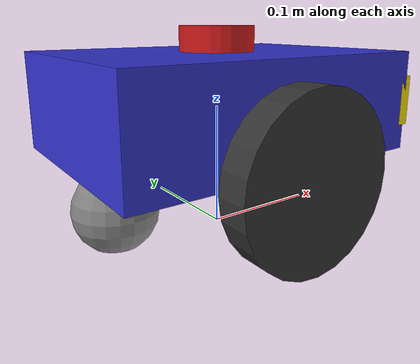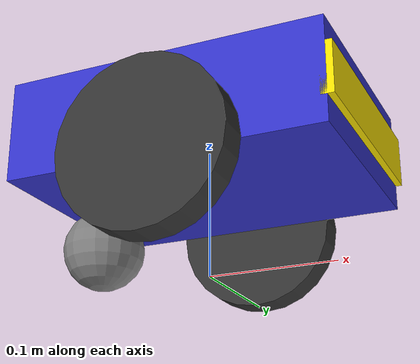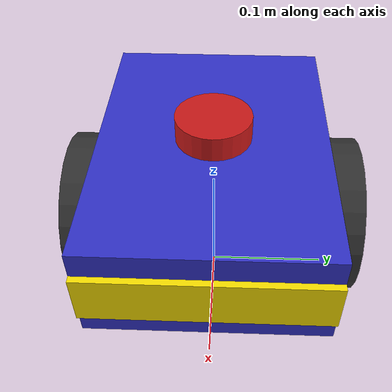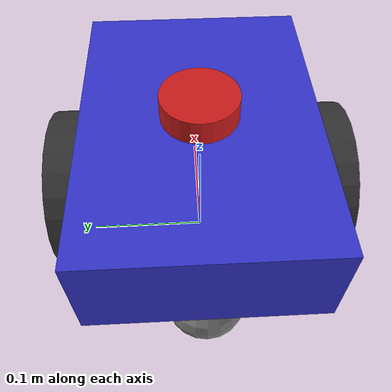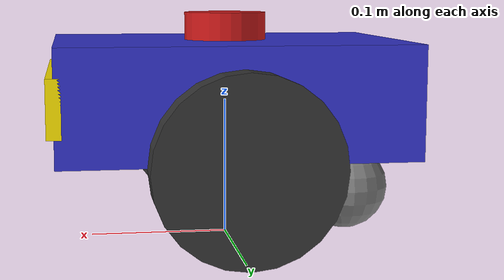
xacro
<?xml version="1.0"?>
<robot xmlns:xacro="http://www.ros.org/wiki/xacro" name="diff_drive_robot">

  <!-- ==================== ROBOT PARAMETERS ==================== -->
  <xacro:property name="wheel_radius" value="0.065"/>
  <xacro:property name="wheel_width" value="0.025"/>
  <xacro:property name="wheel_base" value="0.21"/>

  <xacro:property name="chassis_length" value="0.25"/>
  <xacro:property name="chassis_width" value="0.18"/>
  <xacro:property name="chassis_height" value="0.08"/>
  <xacro:property name="chassis_mass" value="2.0"/>

  <xacro:property name="caster_radius" value="0.0325"/>
  <xacro:property name="lidar_radius" value="0.03"/>
  <xacro:property name="lidar_height" value="0.02"/>

  <!-- ==================== BASE FOOTPRINT ==================== -->
  <link name="base_footprint"/>

  <joint name="base_footprint_joint" type="fixed">
    <parent link="base_footprint"/>
    <child link="base_link"/>
    <origin xyz="0 0 ${wheel_radius}" rpy="0 0 0"/>
  </joint>

  <!-- ==================== BASE LINK (CHASSIS) ==================== -->
  <link name="base_link">
    <visual>
      <geometry>
        <box size="${chassis_length} ${chassis_width} ${chassis_height}"/>
      </geometry>
      <origin xyz="0 0 ${chassis_height/2}" rpy="0 0 0"/>
      <material name="blue">
        <color rgba="0.2 0.2 0.8 1.0"/>
      </material>
    </visual>
    <collision>
      <geometry>
        <box size="${chassis_length} ${chassis_width} ${chassis_height}"/>
      </geometry>
      <origin xyz="0 0 ${chassis_height/2}" rpy="0 0 0"/>
    </collision>
    <inertial>
      <mass value="${chassis_mass}"/>
      <origin xyz="-0.04 0 0" rpy="0 0 0"/>
      <inertia ixx="0.01" ixy="0.0" ixz="0.0"
               iyy="0.01" iyz="0.0"
               izz="0.01"/>
    </inertial>
  </link>

  <!-- ==================== LEFT WHEEL ==================== -->
  <link name="left_wheel">
    <visual>
      <geometry>
        <cylinder radius="${wheel_radius}" length="${wheel_width}"/>
      </geometry>
      <origin xyz="0 0 0" rpy="${pi/2} 0 0"/>
      <material name="dark_grey">
        <color rgba="0.2 0.2 0.2 1.0"/>
      </material>
    </visual>
    <collision>
      <geometry>
        <cylinder radius="${wheel_radius}" length="${wheel_width}"/>
      </geometry>
      <origin xyz="0 0 0" rpy="${pi/2} 0 0"/>
    </collision>
    <inertial>
      <mass value="0.3"/>
      <origin xyz="0 0 0" rpy="${pi/2} 0 0"/>
      <inertia ixx="0.0005" ixy="0.0" ixz="0.0"
               iyy="0.0005" iyz="0.0"
               izz="0.0005"/>
    </inertial>
  </link>

  <joint name="left_wheel_joint" type="continuous">
    <parent link="base_link"/>
    <child link="left_wheel"/>
    <origin xyz="0 ${wheel_base/2} 0" rpy="0 0 0"/>
    <axis xyz="0 1 0"/>
  </joint>

  <!-- ==================== RIGHT WHEEL ==================== -->
  <link name="right_wheel">
    <visual>
      <geometry>
        <cylinder radius="${wheel_radius}" length="${wheel_width}"/>
      </geometry>
      <origin xyz="0 0 0" rpy="${pi/2} 0 0"/>
      <material name="dark_grey">
        <color rgba="0.2 0.2 0.2 1.0"/>
      </material>
    </visual>
    <collision>
      <geometry>
        <cylinder radius="${wheel_radius}" length="${wheel_width}"/>
      </geometry>
      <origin xyz="0 0 0" rpy="${pi/2} 0 0"/>
    </collision>
    <inertial>
      <mass value="0.3"/>
      <origin xyz="0 0 0" rpy="${pi/2} 0 0"/>
      <inertia ixx="0.0005" ixy="0.0" ixz="0.0"
               iyy="0.0005" iyz="0.0"
               izz="0.0005"/>
    </inertial>
  </link>

  <joint name="right_wheel_joint" type="continuous">
    <parent link="base_link"/>
    <child link="right_wheel"/>
    <origin xyz="0 ${-wheel_base/2} 0" rpy="0 0 0"/>
    <axis xyz="0 1 0"/>
  </joint>

  <!-- ==================== CASTER WHEEL ==================== -->
  <link name="caster_wheel">
    <visual>
      <geometry>
        <sphere radius="${caster_radius}"/>
      </geometry>
      <material name="grey">
        <color rgba="0.5 0.5 0.5 1.0"/>
      </material>
    </visual>
    <collision>
      <geometry>
        <sphere radius="${caster_radius}"/>
      </geometry>
    </collision>
    <inertial>
      <mass value="0.1"/>
      <inertia ixx="0.0001" ixy="0.0" ixz="0.0"
               iyy="0.0001" iyz="0.0"
               izz="0.0001"/>
    </inertial>
  </link>

  <joint name="caster_wheel_joint" type="fixed">
    <parent link="base_link"/>
    <child link="caster_wheel"/>
    <origin xyz="${-chassis_length/2 + caster_radius} 0 ${-(wheel_radius - caster_radius)}" rpy="0 0 0"/>
  </joint>

  <!-- ==================== FRONT INDICATOR (so we know which side is front) ==================== -->
  <link name="front_indicator">
    <visual>
      <geometry>
        <box size="0.01 ${chassis_width} 0.04"/>
      </geometry>
      <material name="yellow">
        <color rgba="1.0 0.9 0.0 1.0"/>
      </material>
    </visual>
  </link>

  <joint name="front_indicator_joint" type="fixed">
    <parent link="base_link"/>
    <child link="front_indicator"/>
    <origin xyz="${chassis_length/2} 0 ${chassis_height/2}" rpy="0 0 0"/>
  </joint>

  <gazebo reference="front_indicator">
    <material>Gazebo/Yellow</material>
  </gazebo>

  <!-- ==================== LIDAR LINK ==================== -->
  <link name="lidar_link">
    <visual>
      <geometry>
        <cylinder radius="${lidar_radius}" length="${lidar_height}"/>
      </geometry>
      <material name="red">
        <color rgba="0.8 0.1 0.1 1.0"/>
      </material>
    </visual>
    <collision>
      <geometry>
        <cylinder radius="${lidar_radius}" length="${lidar_height}"/>
      </geometry>
    </collision>
    <inertial>
      <mass value="0.1"/>
      <inertia ixx="0.0001" ixy="0.0" ixz="0.0"
               iyy="0.0001" iyz="0.0"
               izz="0.0001"/>
    </inertial>
  </link>

  <joint name="lidar_joint" type="fixed">
    <parent link="base_link"/>
    <child link="lidar_link"/>
    <origin xyz="0 0 ${chassis_height + lidar_height/2}" rpy="0 0 0"/>
  </joint>

  <!-- ==================== IMU LINK ==================== -->
  <link name="imu_link">
    <visual>
      <geometry>
        <box size="0.02 0.02 0.01"/>
      </geometry>
      <material name="green">
        <color rgba="0.1 0.8 0.1 1.0"/>
      </material>
    </visual>
    <collision>
      <geometry>
        <box size="0.02 0.02 0.01"/>
      </geometry>
    </collision>
    <inertial>
      <mass value="0.02"/>
      <inertia ixx="0.00001" ixy="0.0" ixz="0.0"
               iyy="0.00001" iyz="0.0"
               izz="0.00001"/>
    </inertial>
  </link>

  <joint name="imu_joint" type="fixed">
    <parent link="base_link"/>
    <child link="imu_link"/>
    <origin xyz="0 0 ${chassis_height/2}" rpy="0 0 0"/>
  </joint>

  <!-- ==================== GAZEBO COLORS ==================== -->
  <gazebo reference="base_link">
    <material>Gazebo/Blue</material>
  </gazebo>
  <gazebo reference="left_wheel">
    <material>Gazebo/DarkGrey</material>
    <mu1>100.0</mu1>
    <mu2>100.0</mu2>
    <kp>1000000.0</kp>
    <kd>1.0</kd>
  </gazebo>
  <gazebo reference="right_wheel">
    <material>Gazebo/DarkGrey</material>
    <mu1>100.0</mu1>
    <mu2>100.0</mu2>
    <kp>1000000.0</kp>
    <kd>1.0</kd>
  </gazebo>
  <gazebo reference="caster_wheel">
    <material>Gazebo/Grey</material>
    <mu1>0.0</mu1>
    <mu2>0.0</mu2>
    <kp>1000000.0</kp>
    <kd>100.0</kd>
    <minDepth>0.001</minDepth>
    <maxVel>1.0</maxVel>
  </gazebo>
  <gazebo reference="lidar_link">
    <material>Gazebo/Red</material>
  </gazebo>
  <gazebo reference="imu_link">
    <material>Gazebo/Green</material>
  </gazebo>

  <!-- ==================== GAZEBO DIFF DRIVE PLUGIN ==================== -->
  <gazebo>
    <plugin name="diff_drive_controller" filename="libgazebo_ros_diff_drive.so">
      <update_rate>30</update_rate>

      <left_joint>left_wheel_joint</left_joint>
      <right_joint>right_wheel_joint</right_joint>

      <wheel_separation>${wheel_base}</wheel_separation>
      <wheel_diameter>${2 * wheel_radius}</wheel_diameter>

      <max_wheel_torque>10.0</max_wheel_torque>
      <max_wheel_acceleration>0.5</max_wheel_acceleration>

      <command_topic>cmd_vel</command_topic>

      <publish_odom>true</publish_odom>
      <publish_odom_tf>true</publish_odom_tf>
      <publish_wheel_tf>true</publish_wheel_tf>

      <odometry_topic>odom</odometry_topic>
      <odometry_frame>odom</odometry_frame>
      <robot_base_frame>base_footprint</robot_base_frame>
    </plugin>
  </gazebo>

  <!-- ==================== GAZEBO LIDAR PLUGIN ==================== -->
  <gazebo reference="lidar_link">
    <sensor type="ray" name="lidar_sensor">
      <pose>0 0 0 0 0 0</pose>
      <visualize>false</visualize>
      <update_rate>20</update_rate>
      <ray>
        <scan>
          <horizontal>
            <samples>360</samples>
            <resolution>1</resolution>
            <min_angle>0.0</min_angle>
            <max_angle>${2 * pi}</max_angle>
          </horizontal>
        </scan>
        <range>
          <min>0.12</min>
          <max>10.0</max>
          <resolution>0.01</resolution>
        </range>
        <noise>
          <type>gaussian</type>
          <mean>0.0</mean>
          <stddev>0.005</stddev>
        </noise>
      </ray>
      <plugin name="laser_controller" filename="libgazebo_ros_ray_sensor.so">
        <ros>
          <remapping>~/out:=scan</remapping>
        </ros>
        <output_type>sensor_msgs/LaserScan</output_type>
        <frame_name>lidar_link</frame_name>
      </plugin>
    </sensor>
  </gazebo>

  <!-- ==================== GAZEBO IMU PLUGIN ==================== -->
  <gazebo reference="imu_link">
    <gravity>true</gravity>
    <sensor type="imu" name="imu_sensor">
      <always_on>true</always_on>
      <update_rate>50</update_rate>
      <visualize>false</visualize>
      <plugin name="imu_controller" filename="libgazebo_ros_imu_sensor.so">
        <ros>
          <remapping>~/out:=imu/data</remapping>
        </ros>
        <initial_orientation_as_reference>false</initial_orientation_as_reference>
        <frame_name>imu_link</frame_name>
      </plugin>
    </sensor>
  </gazebo>

</robot>
